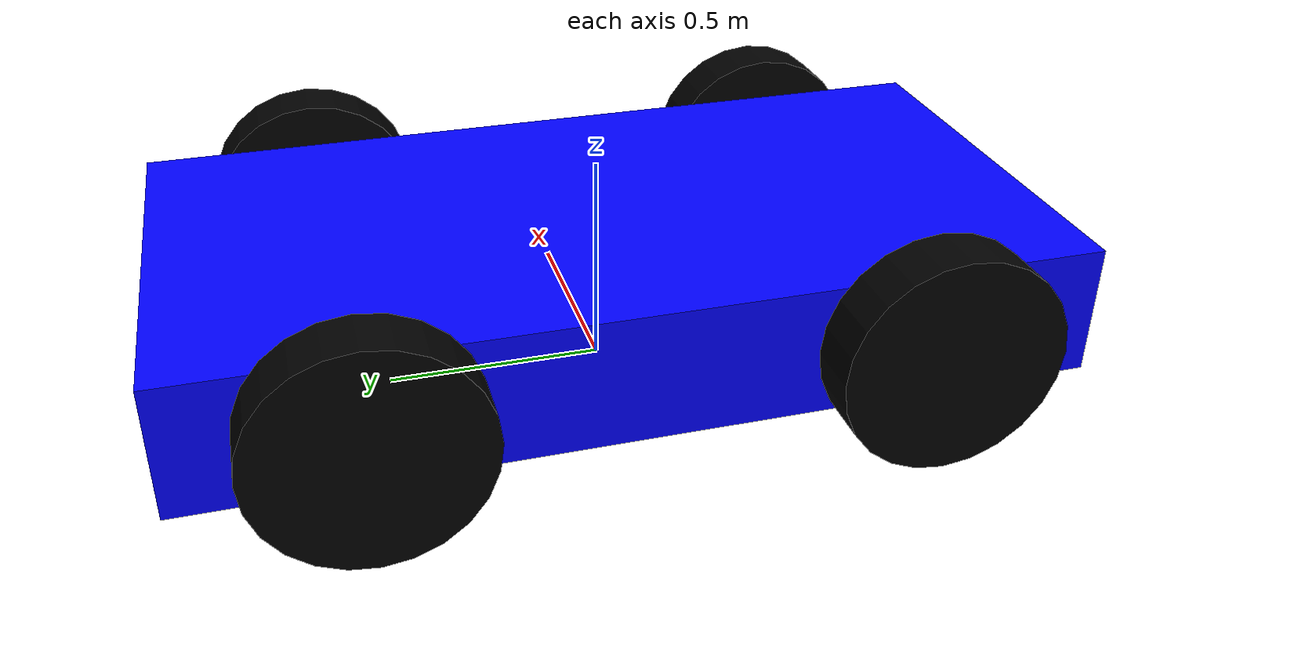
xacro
<?xml version="1.0"?>
<robot name="rbo" xmlns:xacro="http://www.ros.org/wiki/xacro">
    <!-- variable -->
    <xacro:property name="PI" value="3.1415926"/>
    <xacro:property name="car_width" value="1.0"/>
    <xacro:property name="car_length" value="2.0"/>
    <xacro:property name="car_height" value="0.3"/>
    <xacro:property name="wheel_length" value="0.13"/>
    <xacro:property name="wheel_radius" value="0.25"/>
    <xacro:property name="wheel_origin_xyz" value="0.0 0.0 0.0"/>
    <xacro:property name="wheel_origin_rpy" value="0.0 ${PI/2} 0.0"/>

    <!-- rviz color -->
    <material name="blue">
        <color rgba="0 0 1 1"/>
    </material>

    <material name="black">
        <color rgba="0 0 0 1"/>
    </material>

    <!-- macro -->
    <xacro:macro name="default_inertial" params="mass">
        <inertial>
            <mass value="${mass}" />
            <inertia ixx="1.0" ixy="0.0" ixz="0.0" iyy="1.0" iyz="0.0" izz="1.0" />
        </inertial>
    </xacro:macro>

    <xacro:macro name="box_geometry" params="width length height">
        <geometry>
            <box size="${width} ${length} ${height}"/>
        </geometry>
    </xacro:macro>

    <xacro:macro name="cylinder_geometry" params="length radius">
        <geometry>
            <cylinder length="${length}" radius="${radius}"/>
        </geometry>
    </xacro:macro>

    <xacro:macro name="default_origin" params="xyz rpyaw">
        <origin xyz="${xyz}" rpy="${rpyaw}"/>
    </xacro:macro>

    <!-- links -->
    <link name="car_link">
        <visual>
            <xacro:box_geometry width="${car_width}" length="${car_length}" height="${car_height}"/>
            <material name="blue"/>
        </visual>
        <collision>
            <xacro:box_geometry width="${car_width}" length="${car_length}" height="${car_height}"/>
        </collision>
        <xacro:default_inertial mass="3.0"/>

    </link>

    <!-- gazebo -->
    <gazebo reference="car_link">
        <material>Gazebo/SkyBlue</material>
        <mu1>0.5</mu1>
        <mu2>0.5</mu2>
    </gazebo>

    <!-- wheel joint macro -->
    <!-- right:1 left:-1 -->
    <xacro:macro name="wheel_car_joint" params="wheel_name front_end left_right">
        <link name="${wheel_name}">
            <visual>
                <xacro:cylinder_geometry length="${wheel_length}" radius="${wheel_radius}"/>
                <xacro:default_origin xyz="${wheel_origin_xyz}" rpyaw="${wheel_origin_rpy}" />
                <material name="black"/>
            </visual>
            <collision>
                <xacro:cylinder_geometry length="${wheel_length}" radius="${wheel_radius}"/>
                <xacro:default_origin xyz="${wheel_origin_xyz}" rpyaw="${wheel_origin_rpy}" />
            </collision>
            <xacro:default_inertial mass="1.0"/>
        </link>

        <!-- joints -->
        <joint name="car_base_${wheel_name}" type="continuous">
            <origin xyz="${left_right*(wheel_length+car_width)/2.0} ${front_end*car_length*0.6/2.0} 0.0" rpy="0.0 0.0 0.0"/>
            <parent link="car_link"/>
            <child link="${wheel_name}"/>
            <axis xyz="1.0 0.0 0.0"/>
        </joint>

        <gazebo reference="${wheel_name}">
            <material>Gazebo/Black</material>
            <mu1>0.5</mu1>
            <mu2>0.5</mu2>
        </gazebo>

        <transmission name="${wheel_name}_transmission">
            <type>transmission_interface/SimpleTransmission</type>
            <joint name="car_base_${wheel_name}">
                <hardwareInterface>hardware_interface/VelocityJointInterface</hardwareInterface>
            </joint>
            <actuator name="${wheel_name}_motor">
                <mechanicalReducction>1</mechanicalReducction>
            </actuator>
        </transmission>
    </xacro:macro>

    <xacro:wheel_car_joint wheel_name="front_right_wheel" front_end="1.0" left_right="1.0"/>
    <xacro:wheel_car_joint wheel_name="front_left_wheel" front_end="1.0" left_right="-1.0"/>
    <xacro:wheel_car_joint wheel_name="end_right_wheel" front_end="-1.0" left_right="1.0"/>
    <xacro:wheel_car_joint wheel_name="end_left_wheel" front_end="-1.0" left_right="-1.0"/>

    <!-- base_link -->
    <link name="base_link"/>
    <joint name="base_link_car" type="fixed">
        <origin xyz="0.0 0.0 ${wheel_radius}" rpy="0.0 0.0 0.0"/>
        <parent link="base_link"/>
        <child link="car_link"/>
    </joint>

    <!-- plagin -->

    <gazebo>
        <plugin name="differential_drive_controller" filename="libgazebo_ros_diff_drive.so">
            <alwaysOn>true</alwaysOn>
            <updateRate>50.0</updateRate>
            <leftJoint>car_base_front_left_wheel</leftJoint>
            <rightJoint>car_base_front_right_wheel</rightJoint>
            <wheelSeparation>1.0</wheelSeparation>
            <wheelDiameter>0.5</wheelDiameter>
            <torque>1.0</torque>
            <commandTopic>cmd_vel</commandTopic>
            <odometryTopic>odom</odometryTopic>
            <odometryFrame>odom</odometryFrame>
            <robotBaseFrame>base_link</robotBaseFrame>
            <publishWheelTF>true</publishWheelTF>
            <publishWheelJointState>true</publishWheelJointState>
            <legecyMode>false</legecyMode>
            <wheelAcceleration>1</wheelAcceleration>
        </plugin>
    </gazebo>

</robot>
